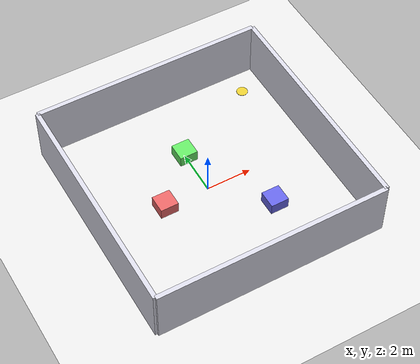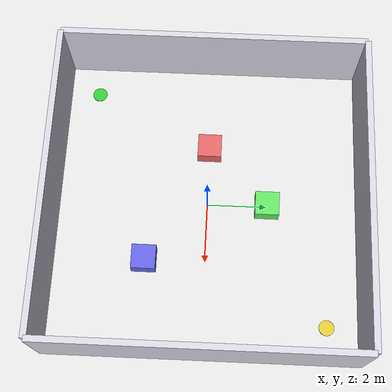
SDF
<?xml version="1.0" ?>
<sdf version="1.9">
  <world name="s_room">

    <!-- ==================== 关键修复：添加 Gazebo 系统插件 ==================== -->
    <!-- 这些插件是从 office.sdf 复制的，确保传感器正常工作 -->

    <plugin name='gz::sim::systems::Physics' filename='libgz-sim-physics-system.so'/>
    <plugin name='gz::sim::systems::UserCommands' filename='libgz-sim-user-commands-system.so'/>
    <plugin name='gz::sim::systems::SceneBroadcaster' filename='libgz-sim-scene-broadcaster-system.so'/>

    <!-- 传感器系统 - 最关键！没有它传感器不会发布数据 -->
    <plugin name="gz::sim::systems::Sensors" filename="libgz-sim-sensors-system.so">
      <render_engine>ogre2</render_engine>
    </plugin>

    <plugin name="gz::sim::systems::Imu" filename="libgz-sim-imu-system.so"/>
    <plugin name="gz::sim::systems::NavSat" filename="libgz-sim-navsat-system.so"/>

    <!-- ==================== 原有配置 ==================== -->

    <!-- 提高环境光与背景，取值必须在 0~1 -->
    <scene>
      <ambient>0.7 0.7 0.7 1</ambient>
      <background>0.9 0.9 0.95 1</background>
    </scene>

    <!-- 太阳光（方向光），颜色取值均 ≤ 1 -->
    <light name="sun" type="directional">
      <pose>0 0 10 0 0 0</pose>
      <cast_shadows>true</cast_shadows>
      <diffuse>1 1 1 1</diffuse>
      <specular>0.5 0.5 0.5 1</specular>
      <attenuation>
        <range>100</range>
        <constant>1.0</constant>
        <linear>0.001</linear>
        <quadratic>0.0001</quadratic>
      </attenuation>
      <direction>-0.3 0.4 -1</direction>
    </light>

    <!-- 额外顶置点光源，增强室内亮度 -->
    <light name="ceiling_lamp" type="point">
      <pose>0 0 2.5 0 0 0</pose>
      <cast_shadows>false</cast_shadows>
      <diffuse>1 1 1 1</diffuse>
      <specular>0.2 0.2 0.2 1</specular>
      <attenuation>
        <range>20</range>
        <constant>0.7</constant>
        <linear>0.02</linear>
        <quadratic>0.001</quadratic>
      </attenuation>
    </light>

    <!-- 地面（浅灰） -->
    <model name="ground">
      <static>true</static>
      <pose>0 0 0 0 0 0</pose>
      <link name="link">
        <collision name="col">
          <geometry>
            <plane><normal>0 0 1</normal><size>50 50</size></plane>
          </geometry>
        </collision>
        <visual name="vis">
          <geometry>
            <plane><normal>0 0 1</normal><size>50 50</size></plane>
          </geometry>
          <material>
            <ambient>0.9 0.9 0.9 1</ambient>
            <diffuse>0.9 0.9 0.9 1</diffuse>
          </material>
        </visual>
      </link>
    </model>

    <!-- 物理 -->
    <physics name="default" type="ode">
      <max_step_size>0.001</max_step_size>
      <real_time_update_rate>1000</real_time_update_rate>
    </physics>

    <!-- 四面墙（浅灰） -->
    <model name="wall_north">
      <static>true</static>
      <pose>0 5.1 1.25 0 0 0</pose>
      <link name="l">
        <collision name="c"><geometry><box><size>10.2 0.2 2.5</size></box></geometry></collision>
        <visual name="v">
          <geometry><box><size>10.2 0.2 2.5</size></box></geometry>
          <material><diffuse>0.85 0.85 0.9 1</diffuse></material>
        </visual>
      </link>
    </model>
    <model name="wall_south">
      <static>true</static>
      <pose>0 -5.1 1.25 0 0 0</pose>
      <link name="l">
        <collision name="c"><geometry><box><size>10.2 0.2 2.5</size></box></geometry></collision>
        <visual name="v">
          <geometry><box><size>10.2 0.2 2.5</size></box></geometry>
          <material><diffuse>0.85 0.85 0.9 1</diffuse></material>
        </visual>
      </link>
    </model>
    <model name="wall_west">
      <static>true</static>
      <pose>-5.1 0 1.25 0 0 0</pose>
      <link name="l">
        <collision name="c"><geometry><box><size>0.2 10.2 2.5</size></box></geometry></collision>
        <visual name="v">
          <geometry><box><size>0.2 10.2 2.5</size></box></geometry>
          <material><diffuse>0.85 0.85 0.9 1</diffuse></material>
        </visual>
      </link>
    </model>
    <model name="wall_east">
      <static>true</static>
      <pose>5.1 0 1.25 0 0 0</pose>
      <link name="l">
        <collision name="c"><geometry><box><size>0.2 10.2 2.5</size></box></geometry></collision>
        <visual name="v">
          <geometry><box><size>0.2 10.2 2.5</size></box></geometry>
          <material><diffuse>0.85 0.85 0.9 1</diffuse></material>
        </visual>
      </link>
    </model>

    <!-- 三个障碍（S形） -->
    <model name="box1">
      <static>true</static>
      <pose>-2 0 0.25 0 0 0</pose>
      <link name="l">
        <collision name="c"><geometry><box><size>0.8 0.8 0.5</size></box></geometry></collision>
        <visual name="v">
          <geometry><box><size>0.8 0.8 0.5</size></box></geometry>
          <material><diffuse>0.9 0.4 0.4 1</diffuse></material>
        </visual>
      </link>
    </model>
    <model name="box2">
      <static>true</static>
      <pose>0 2 0.25 0 0 0</pose>
      <link name="l">
        <collision name="c"><geometry><box><size>0.8 0.8 0.5</size></box></geometry></collision>
        <visual name="v">
          <geometry><box><size>0.8 0.8 0.5</size></box></geometry>
          <material><diffuse>0.4 0.9 0.4 1</diffuse></material>
        </visual>
      </link>
    </model>
    <model name="box3">
      <static>true</static>
      <pose>2 -2 0.25 0 0 0</pose>
      <link name="l">
        <collision name="c"><geometry><box><size>0.8 0.8 0.5</size></box></geometry></collision>
        <visual name="v">
          <geometry><box><size>0.8 0.8 0.5</size></box></geometry>
          <material><diffuse>0.4 0.4 0.9 1</diffuse></material>
        </visual>
      </link>
    </model>

    <!-- 起点 / 终点 -->
    <model name="start">
      <static>true</static>
      <pose>-4 -4 0.01 0 0 0</pose>
      <link name="l"><visual name="v">
        <geometry><cylinder><radius>0.25</radius><length>0.02</length></cylinder></geometry>
        <material><diffuse>0.2 0.8 0.2 1</diffuse></material>
      </visual></link>
    </model>
    <model name="goal">
      <static>true</static>
      <pose>4 4 0.01 0 0 0</pose>
      <link name="l"><visual name="v">
        <geometry><cylinder><radius>0.25</radius><length>0.02</length></cylinder></geometry>
        <material><diffuse>0.9 0.8 0.2 1</diffuse></material>
      </visual></link>
    </model>

  </world>
</sdf>
